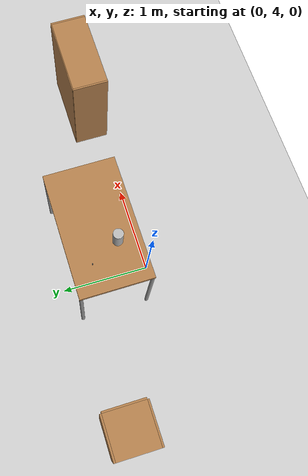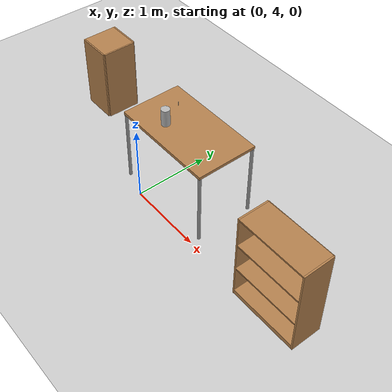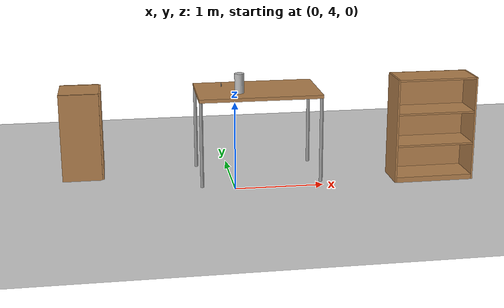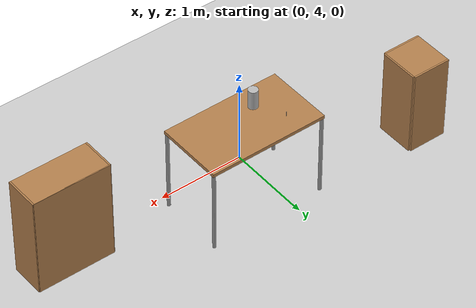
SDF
<sdf version="1.6">
 <world name="default">
  <physics name="default_physics" default="0" type="ode">
   <max_step_size>0.001</max_step_size>
   <real_time_factor>1</real_time_factor>
   <real_time_update_rate>1000</real_time_update_rate>
  </physics>
  <light name="sun" type="directional">
   <pose>0 0 10 0 -0 0</pose>
   <diffuse>0.8 0.8 0.8 1</diffuse>
   <specular>0.1 0.1 0.1 1</specular>
   <attenuation>
    <range>1000</range>
    <constant>0.9</constant>
    <linear>0.01</linear>
    <quadratic>0.001</quadratic>
   </attenuation>
   <direction>-0.5 0.5 -1</direction>
  </light>
  <model name="ground_plane">
   <static>1</static>
   <link name="link">
    <collision name="collision">
     <geometry><plane><normal>0 0 1</normal><size>100 100</size></plane></geometry>
     <surface><friction><ode><mu>100</mu><mu2>50</mu2></ode></friction></surface>
    </collision>
    <visual name="visual">
     <cast_shadows>0</cast_shadows>
     <geometry><plane><normal>0 0 1</normal><size>100 100</size></plane></geometry>
     <material>
      <script><uri>file://media/materials/scripts/gazebo.material</uri><name>Gazebo/Grey</name></script>
     </material>
    </visual>
   </link>
  </model>
  <gravity>0 0 -9.8</gravity>
  <magnetic_field>6e-06 2.3e-05 -4.2e-05</magnetic_field>
  <atmosphere type="adiabatic"/>
  <scene><ambient>0.4 0.4 0.4 1</ambient><background>0.7 0.7 0.7 1</background><shadows>1</shadows></scene>
  <spherical_coordinates>
   <surface_model>EARTH_WGS84</surface_model>
   <latitude_deg>0</latitude_deg>
   <longitude_deg>0</longitude_deg>
   <elevation>0</elevation>
   <heading_deg>0</heading_deg>
  </spherical_coordinates>
  <model name="table">
   <static>0</static>
   <link name="link">
    <collision name="surface">
     <pose>0 0 1 0 -0 0</pose>
     <geometry><box><size>1.5 0.8 0.03</size></box></geometry>
     <surface><friction><ode><mu>0.6</mu><mu2>0.6</mu2></ode></friction></surface>
    </collision>
    <visual name="visual1">
     <pose>0 0 1 0 -0 0</pose>
     <geometry><box><size>1.4 0.8 0.04</size></box></geometry>
     <material>
      <script><uri>file://media/materials/scripts/gazebo.material</uri><name>Gazebo/Wood</name></script>
     </material>
    </visual>
    <collision name="front_left_leg">
     <pose>0.68 0.38 0.5 0 -0 0</pose>
     <geometry><cylinder><radius>0.02</radius><length>1</length></cylinder></geometry>
    </collision>
    <visual name="front_left_leg">
     <pose>0.68 0.38 0.5 0 -0 0</pose>
     <geometry><cylinder><radius>0.02</radius><length>1</length></cylinder></geometry>
     <material>
      <script><uri>file://media/materials/scripts/gazebo.material</uri><name>Gazebo/Grey</name></script>
     </material>
    </visual>
    <collision name="front_right_leg">
     <pose>0.68 -0.38 0.5 0 -0 0</pose>
     <geometry><cylinder><radius>0.02</radius><length>1</length></cylinder></geometry>
    </collision>
    <visual name="front_right_leg">
     <pose>0.68 -0.38 0.5 0 -0 0</pose>
     <geometry><cylinder><radius>0.02</radius><length>1</length></cylinder></geometry>
     <material>
      <script><uri>file://media/materials/scripts/gazebo.material</uri><name>Gazebo/Grey</name></script>
     </material>
    </visual>
    <collision name="back_right_leg">
     <pose>-0.68 -0.38 0.5 0 -0 0</pose>
     <geometry><cylinder><radius>0.02</radius><length>1</length></cylinder></geometry>
    </collision>
    <visual name="back_right_leg">
     <pose>-0.68 -0.38 0.5 0 -0 0</pose>
     <geometry><cylinder><radius>0.02</radius><length>1</length></cylinder></geometry>
     <material>
      <script><uri>file://media/materials/scripts/gazebo.material</uri><name>Gazebo/Grey</name></script>
     </material>
    </visual>
    <collision name="back_left_leg">
     <pose>-0.68 0.38 0.5 0 -0 0</pose>
     <geometry><cylinder><radius>0.02</radius><length>1</length></cylinder></geometry>
    </collision>
    <visual name="back_left_leg">
     <pose>-0.68 0.38 0.5 0 -0 0</pose>
     <geometry><cylinder><radius>0.02</radius><length>1</length></cylinder></geometry>
     <material>
      <script><uri>file://media/materials/scripts/gazebo.material</uri><name>Gazebo/Grey</name></script>
     </material>
    </visual>
    <inertial>
     <inertia><ixx>1</ixx><ixy>0</ixy><ixz>0</ixz><iyy>1</iyy><iyz>0</iyz><izz>1</izz></inertia>
     <mass>1</mass>
    </inertial>
   </link>
   <pose>0.31811 4.49875 -1e-06 -3e-06 -0 0.002258</pose>
  </model>
  <model name="beer">
   <link name="link">
    <pose>0 0 0.115 0 -0 0</pose>
    <inertial>
     <mass>0.39</mass>
     <inertia><ixx>0.00058</ixx><ixy>0</ixy><ixz>0</ixz><iyy>0.00058</iyy><iyz>0</iyz><izz>0.00019</izz></inertia>
    </inertial>
    <collision name="collision">
     <geometry><cylinder><radius>0.055</radius><length>0.23</length></cylinder></geometry>
    </collision>
    <visual name="visual">
     <geometry><cylinder><radius>0.055</radius><length>0.23</length></cylinder></geometry>
     <material>
      <script>
       <uri>model://beer/materials/scripts</uri>
       <uri>model://beer/materials/textures</uri>
       <name>Beer/Diffuse</name>
      </script>
     </material>
    </visual>
   </link>
   <pose>0.097272 4.35036 1.015 1.2e-05 -5.8e-05 0.153958</pose>
  </model>
  <model name="bookshelf">
   <static>1</static>
   <link name="link">
    <inertial><mass>1</mass></inertial>
    <collision name="back">
     <pose>0 0.005 0.6 0 -0 0</pose>
     <geometry><box><size>0.9 0.01 1.2</size></box></geometry>
    </collision>
    <visual name="visual1">
     <pose>0 0.005 0.6 0 -0 0</pose>
     <geometry><box><size>0.9 0.01 1.2</size></box></geometry>
     <material>
      <script><uri>file://media/materials/scripts/gazebo.material</uri><name>Gazebo/Wood</name></script>
     </material>
    </visual>
    <collision name="left_side">
     <pose>0.45 -0.195 0.6 0 -0 0</pose>
     <geometry><box><size>0.02 0.4 1.2</size></box></geometry>
    </collision>
    <visual name="visual2">
     <pose>0.45 -0.195 0.6 0 -0 0</pose>
     <geometry><box><size>0.02 0.4 1.2</size></box></geometry>
     <material>
      <script><uri>file://media/materials/scripts/gazebo.material</uri><name>Gazebo/Wood</name></script>
     </material>
    </visual>
    <collision name="right_side">
     <pose>-0.45 -0.195 0.6 0 -0 0</pose>
     <geometry><box><size>0.02 0.4 1.2</size></box></geometry>
    </collision>
    <visual name="visual3">
     <pose>-0.45 -0.195 0.6 0 -0 0</pose>
     <geometry><box><size>0.02 0.4 1.2</size></box></geometry>
     <material>
      <script><uri>file://media/materials/scripts/gazebo.material</uri><name>Gazebo/Wood</name></script>
     </material>
    </visual>
    <collision name="bottom">
     <pose>0 -0.195 0.03 0 -0 0</pose>
     <geometry><box><size>0.88 0.4 0.06</size></box></geometry>
    </collision>
    <visual name="visual4">
     <pose>0 -0.195 0.03 0 -0 0</pose>
     <geometry><box><size>0.88 0.4 0.06</size></box></geometry>
     <material>
      <script><uri>file://media/materials/scripts/gazebo.material</uri><name>Gazebo/Wood</name></script>
     </material>
    </visual>
    <collision name="top">
     <pose>0 -0.195 1.19 0 -0 0</pose>
     <geometry><box><size>0.88 0.4 0.02</size></box></geometry>
    </collision>
    <visual name="visual5">
     <pose>0 -0.195 1.19 0 -0 0</pose>
     <geometry><box><size>0.88 0.4 0.02</size></box></geometry>
     <material>
      <script><uri>file://media/materials/scripts/gazebo.material</uri><name>Gazebo/Wood</name></script>
     </material>
    </visual>
    <collision name="low_shelf">
     <pose>0 -0.195 0.43 0 -0 0</pose>
     <geometry><box><size>0.88 0.4 0.02</size></box></geometry>
    </collision>
    <visual name="visual6">
     <pose>0 -0.195 0.43 0 -0 0</pose>
     <geometry><box><size>0.88 0.4 0.02</size></box></geometry>
     <material>
      <script><uri>file://media/materials/scripts/gazebo.material</uri><name>Gazebo/Wood</name></script>
     </material>
    </visual>
    <collision name="high_shelf">
     <pose>0 -0.195 0.8 0 -0 0</pose>
     <geometry><box><size>0.88 0.4 0.02</size></box></geometry>
    </collision>
    <visual name="visual7">
     <pose>0 -0.195 0.8 0 -0 0</pose>
     <geometry><box><size>0.88 0.4 0.02</size></box></geometry>
     <material>
      <script><uri>file://media/materials/scripts/gazebo.material</uri><name>Gazebo/Wood</name></script>
     </material>
    </visual>
   </link>
   <pose>2.28344 4.32087 0 0 -0 0</pose>
  </model>
  <model name="cabinet">
   <static>1</static>
   <link name="cabinet_bottom_plate">
    <inertial>
     <pose>0 0 -1 0 -0 0</pose>
     <inertia><ixx>2.05</ixx><ixy>0</ixy><ixz>0</ixz><iyy>2.05</iyy><iyz>0</iyz><izz>2.05</izz></inertia>
     <mass>25</mass>
    </inertial>
    <collision name="cabinet_bottom_plate_geom">
     <pose>0 0 0.01 0 -0 0</pose>
     <geometry><box><size>0.45 0.45 0.02</size></box></geometry>
    </collision>
    <visual name="cabinet_bottom_plate_geom_visual">
     <pose>0 0 0.01 0 -0 0</pose>
     <geometry><box><size>0.45 0.45 0.02</size></box></geometry>
     <material>
      <script><uri>file://media/materials/scripts/gazebo.material</uri><name>Gazebo/Wood</name></script>
     </material>
    </visual>
    <collision name="cabinet_bottom_plate_geom_cabinet_back_plate">
     <pose>0.235 0 0.51 0 -0 0</pose>
     <geometry><box><size>0.02 0.45 1.02</size></box></geometry>
    </collision>
    <visual name="cabinet_bottom_plate_geom_cabinet_back_plate_visual">
     <pose>0.235 0 0.51 0 -0 0</pose>
     <geometry><box><size>0.02 0.45 1.02</size></box></geometry>
     <material>
      <script><uri>file://media/materials/scripts/gazebo.material</uri><name>Gazebo/Wood</name></script>
     </material>
    </visual>
    <collision name="cabinet_bottom_plate_geom_cabinet_left_plate">
     <pose>0 0.235 0.51 0 -0 0</pose>
     <geometry><box><size>0.45 0.02 1.02</size></box></geometry>
    </collision>
    <visual name="cabinet_bottom_plate_geom_cabinet_left_plate_visual">
     <pose>0 0.235 0.51 0 -0 0</pose>
     <geometry><box><size>0.45 0.02 1.02</size></box></geometry>
     <material>
      <script><uri>file://media/materials/scripts/gazebo.material</uri><name>Gazebo/Wood</name></script>
     </material>
    </visual>
    <collision name="cabinet_bottom_plate_geom_cabinet_middle_plate">
     <pose>0 0 0.51 0 -0 0</pose>
     <geometry><box><size>0.45 0.45 0.02</size></box></geometry>
    </collision>
    <visual name="cabinet_bottom_plate_geom_cabinet_middle_plate_visual">
     <pose>0 0 0.51 0 -0 0</pose>
     <geometry><box><size>0.45 0.45 0.02</size></box></geometry>
     <material>
      <script><uri>file://media/materials/scripts/gazebo.material</uri><name>Gazebo/Wood</name></script>
     </material>
    </visual>
    <collision name="cabinet_bottom_plate_geom_cabinet_right_plate">
     <pose>0 -0.235 0.51 0 -0 0</pose>
     <geometry><box><size>0.45 0.02 1.02</size></box></geometry>
    </collision>
    <visual name="cabinet_bottom_plate_geom_cabinet_right_plate_visual">
     <pose>0 -0.235 0.51 0 -0 0</pose>
     <geometry><box><size>0.45 0.02 1.02</size></box></geometry>
     <material>
      <script><uri>file://media/materials/scripts/gazebo.material</uri><name>Gazebo/Wood</name></script>
     </material>
    </visual>
    <collision name="cabinet_bottom_plate_geom_cabinet_top_plate">
     <pose>0 0 1.01 0 -0 0</pose>
     <geometry><box><size>0.45 0.45 0.02</size></box></geometry>
    </collision>
    <visual name="cabinet_bottom_plate_geom_cabinet_top_plate_visual">
     <pose>0 0 1.01 0 -0 0</pose>
     <geometry><box><size>0.45 0.45 0.02</size></box></geometry>
     <material>
      <script><uri>file://media/materials/scripts/gazebo.material</uri><name>Gazebo/Wood</name></script>
     </material>
    </visual>
   </link>
   <pose>-1.69767 4.77627 0 0 -0 0</pose>
  </model>
  <model name="metal_peg">
   <link name="link">
    <pose>0 0 0.031 0 -0 0</pose>
    <inertial>
     <mass>0.0121</mass>
     <inertia>
      <ixx>3.90898e-06</ixx>
      <ixy>0</ixy>
      <ixz>0</ixz>
      <iyy>3.90898e-06</iyy>
      <iyz>0</iyz>
      <izz>6.58845e-08</izz>
     </inertia>
    </inertial>
    <collision name="collision">
     <geometry><cylinder><radius>0.0033</radius><length>0.062</length></cylinder></geometry>
     <surface>
      <contact>
       <poissons_ratio>0.305</poissons_ratio>
       <elastic_modulus>2e+11</elastic_modulus>
       <ode><kp>100000</kp><kd>100</kd><max_vel>100</max_vel><min_depth>0.001</min_depth></ode>
      </contact>
      <friction>
       <torsional>
        <coefficient>1</coefficient>
        <use_patch_radius>0</use_patch_radius>
        <surface_radius>0.01</surface_radius>
       </torsional>
      </friction>
     </surface>
    </collision>
    <visual name="visual">
     <geometry><cylinder><radius>0.0033</radius><length>0.062</length></cylinder></geometry>
     <material>
      <script><uri>file://media/materials/scripts/gazebo.material</uri><name>Gazebo/Grey</name></script>
     </material>
    </visual>
   </link>
   <pose>-0.074042 4.6695 1.015 -0.000327 -0.00065 -0.122589</pose>
  </model>
 </world>
</sdf>
